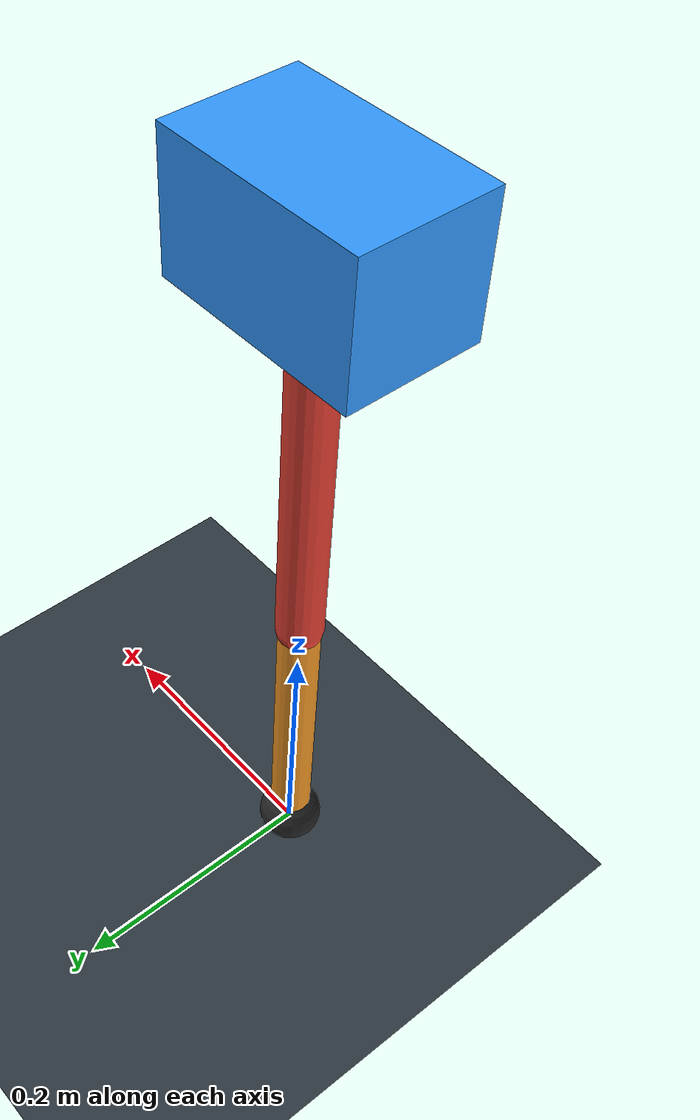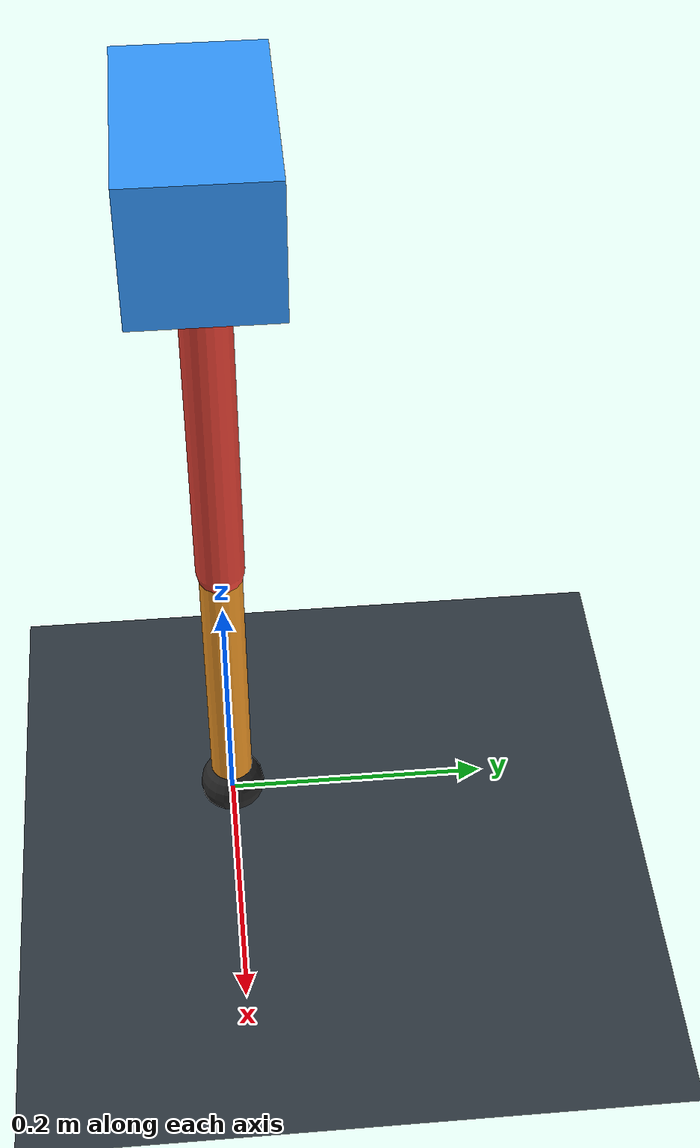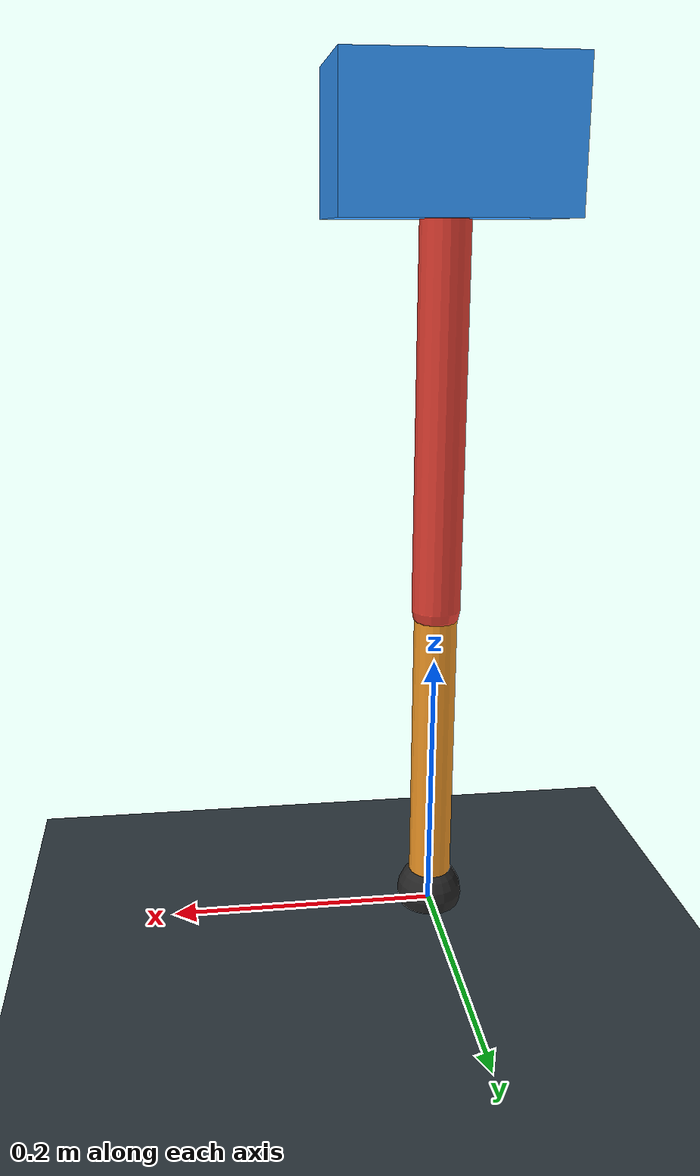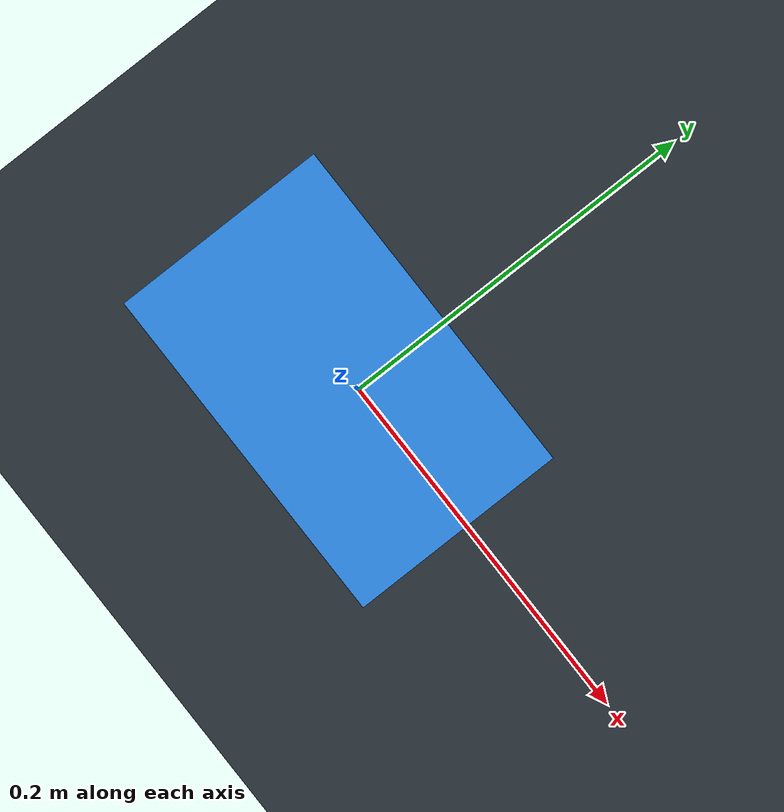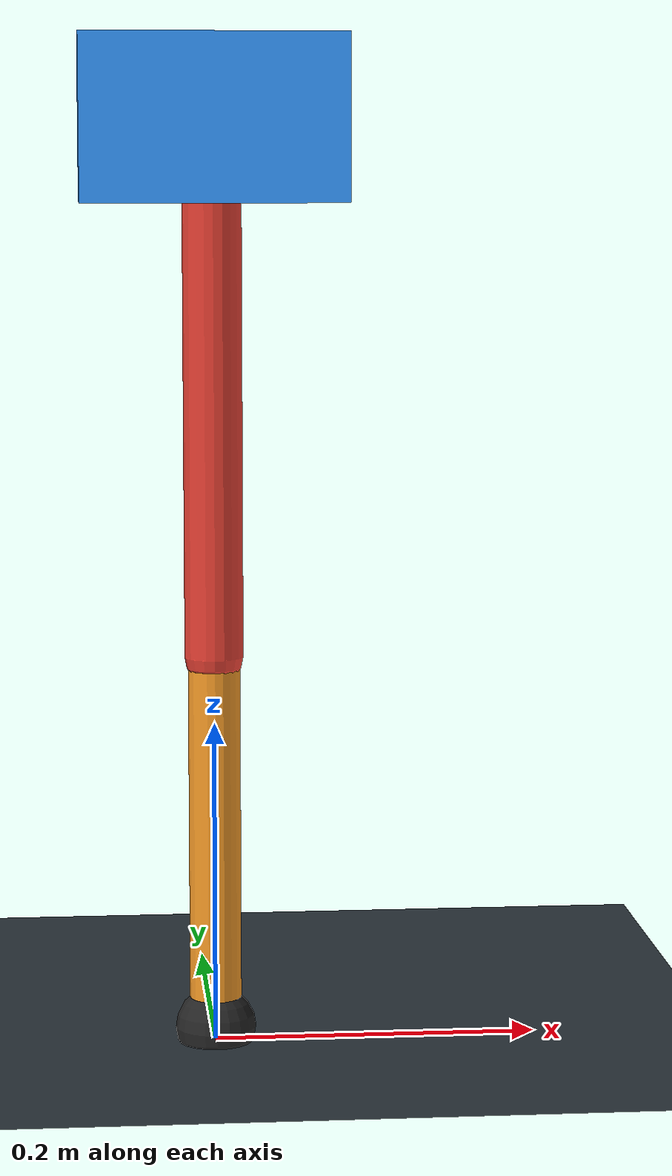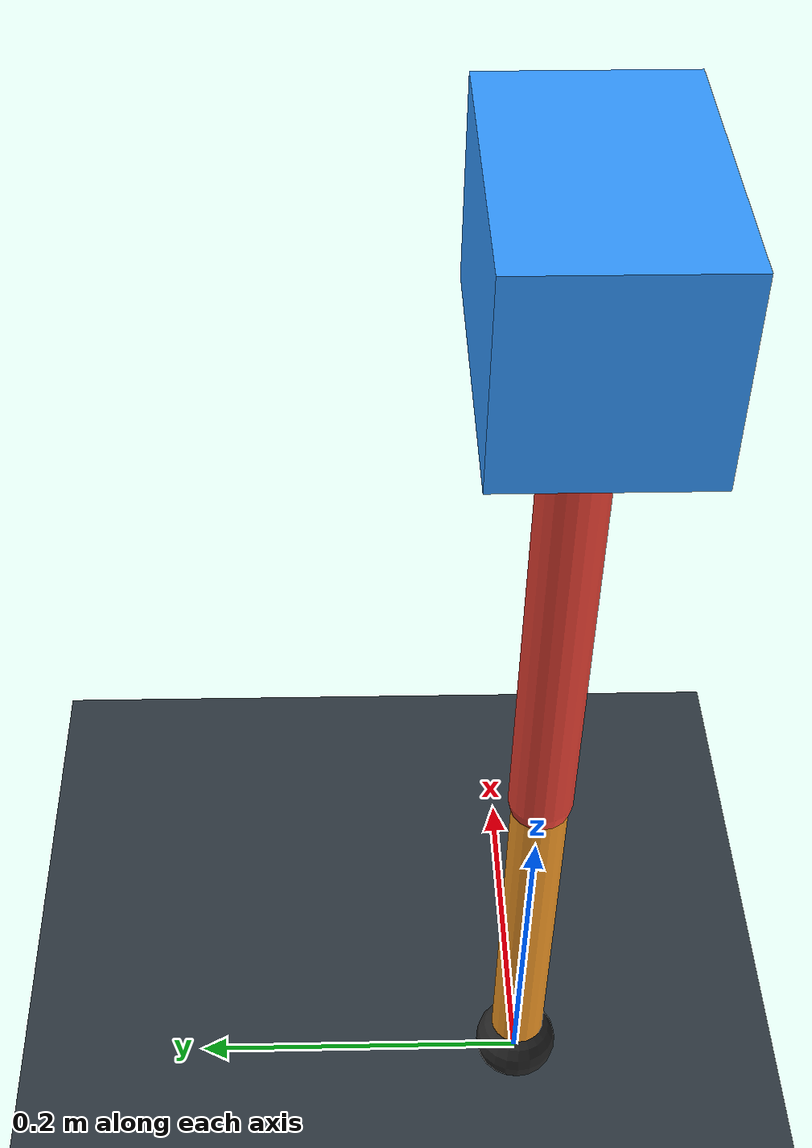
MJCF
<mujoco model="single_axis_two_bar">
  <compiler angle="radian" inertiafromgeom="true"/>
  <option timestep="0.001" integrator="implicitfast" gravity="0 0 -9.81"/>
  <default>
    <joint damping="0.08"/>
    <geom friction="1.2 0.01 0.0001" condim="3"/>
  </default>
  <worldbody>
    <geom name="floor" type="plane" size="5 5 0.1" rgba="0.18 0.22 0.25 1"/>
    <body name="carriage" pos="0 0 0.5699029981587145">
      <joint name="pole_slide" type="slide" axis="0 0 1"/>
      <geom name="payload" type="box" size="0.08 0.05 0.05" mass="3.3870263076422393" rgba="0.2 0.6 1 1"/>
      <body name="thigh" pos="0 0 0">
        <joint name="hip" type="hinge" axis="0 1 0"/>
        <geom name="thigh_link" type="capsule" fromto="0 0 0 0 0 -0.3283622320571315" size="0.018" mass="0.23396242926478664" rgba="0.9 0.25 0.2 1"/>
        <body name="shank" pos="0 0 -0.3283622320571315">
          <joint name="knee" type="hinge" axis="0 1 0"/>
          <geom name="shank_link" type="capsule" fromto="0 0 0 0 0 -0.2333934361477289" size="0.016" mass="0.1662959072774173" rgba="0.95 0.6 0.15 1"/>
          <geom name="foot" type="sphere" pos="0 0 -0.2333934361477289" size="0.025" mass="0.03" rgba="0.15 0.15 0.15 1"/>
          <site name="toe" pos="0 0 -0.2333934361477289" size="0.008"/>
        </body>
      </body>
    </body>
  </worldbody>
  <actuator>
    <motor name="hip_motor" joint="hip" ctrlrange="-13.592195911724641 13.592195911724641"/>
    <motor name="knee_motor" joint="knee" ctrlrange="-137.94228192944706 137.94228192944706"/>
  </actuator>
</mujoco>
